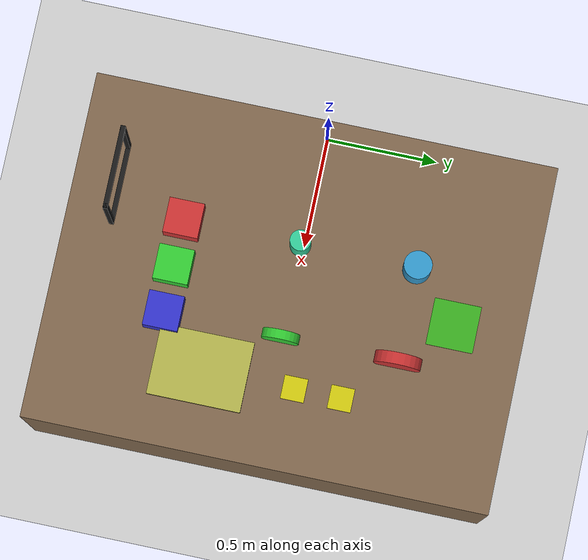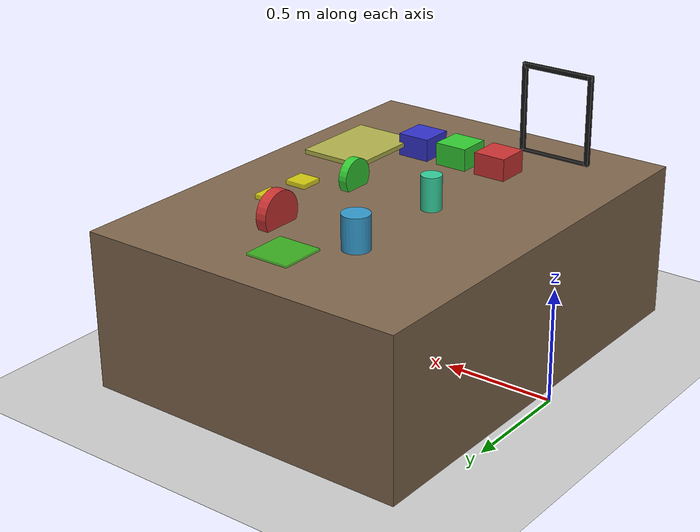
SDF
<?xml version="1.0" ?>
<sdf version="1.8">
  <world name="assembly_construction_tasks">

    <!-- Physics -->
    <physics name="1ms" type="ignored">
      <max_step_size>0.001</max_step_size>
      <real_time_factor>1.0</real_time_factor>
    </physics>

    <!-- Plugins -->
    <plugin filename="gz-sim-physics-system" name="gz::sim::systems::Physics"/>
    <plugin filename="gz-sim-user-commands-system" name="gz::sim::systems::UserCommands"/>
    <plugin filename="gz-sim-scene-broadcaster-system" name="gz::sim::systems::SceneBroadcaster"/>
    <plugin filename="gz-sim-contact-system" name="gz::sim::systems::Contact"/>

    <!-- Lighting -->
    <light type="directional" name="sun">
      <cast_shadows>true</cast_shadows>
      <pose>0 0 10 0 0 0</pose>
      <diffuse>0.8 0.8 0.8 1</diffuse>
      <specular>0.2 0.2 0.2 1</specular>
      <attenuation>
        <range>1000</range>
        <constant>0.9</constant>
        <linear>0.01</linear>
        <quadratic>0.001</quadratic>
      </attenuation>
      <direction>-0.5 0.1 -0.9</direction>
    </light>

    <!-- Ground Plane -->
    <model name="ground_plane">
      <static>true</static>
      <link name="link">
        <collision name="collision">
          <geometry>
            <plane>
              <normal>0 0 1</normal>
            </plane>
          </geometry>
        </collision>
        <visual name="visual">
          <geometry>
            <plane>
              <normal>0 0 1</normal>
              <size>100 100</size>
            </plane>
          </geometry>
          <material>
            <ambient>0.8 0.8 0.8 1</ambient>
            <diffuse>0.8 0.8 0.8 1</diffuse>
            <specular>0.8 0.8 0.8 1</specular>
          </material>
        </visual>
      </link>
    </model>

    <!-- Work Table -->
    <model name="work_table">
      <static>true</static>
      <pose>0.8 0 0.35 0 0 0</pose>
      <link name="link">
        <collision name="collision">
          <geometry>
            <box>
              <size>1.5 2.0 0.7</size>
            </box>
          </geometry>
        </collision>
        <visual name="visual">
          <geometry>
            <box>
              <size>1.5 2.0 0.7</size>
            </box>
          </geometry>
          <material>
            <ambient>0.5 0.4 0.3 1</ambient>
            <diffuse>0.5 0.4 0.3 1</diffuse>
          </material>
        </visual>
      </link>
    </model>

    <!-- Large Peg (Fixed Base) -->
    <model name="peg_base_large">
      <static>true</static>
      <pose>0.6 0.5 0.75 0 0 0</pose>
      <link name="link">
        <collision name="collision">
          <geometry>
            <cylinder>
              <radius>0.06</radius>
              <length>0.2</length>
            </cylinder>
          </geometry>
        </collision>
        <visual name="visual">
          <geometry>
            <cylinder>
              <radius>0.06</radius>
              <length>0.2</length>
            </cylinder>
          </geometry>
          <material>
            <ambient>0.2 0.6 0.8 1</ambient>
            <diffuse>0.2 0.6 0.8 1</diffuse>
          </material>
        </visual>
      </link>
    </model>

    <!-- Large Hole (Ring to place on peg) -->
    <model name="ring_large">
      <pose>1.0 0.5 0.75 0 1.57 0</pose>
      <link name="link">
        <collision name="collision_outer">
          <geometry>
            <cylinder>
              <radius>0.10</radius>
              <length>0.05</length>
            </cylinder>
          </geometry>
        </collision>
        <collision name="collision_inner">
          <geometry>
            <cylinder>
              <radius>0.065</radius>
              <length>0.051</length>
            </cylinder>
          </geometry>
        </collision>
        <visual name="visual">
          <geometry>
            <cylinder>
              <radius>0.10</radius>
              <length>0.05</length>
            </cylinder>
          </geometry>
          <material>
            <ambient>0.8 0.2 0.2 1</ambient>
            <diffuse>0.8 0.2 0.2 1</diffuse>
          </material>
        </visual>
        <inertial>
          <mass>0.5</mass>
          <inertia>
            <ixx>0.001</ixx>
            <iyy>0.001</iyy>
            <izz>0.001</izz>
          </inertia>
        </inertial>
      </link>
    </model>

    <!-- Medium Peg -->
    <model name="peg_base_medium">
      <static>true</static>
      <pose>0.6 0 0.75 0 0 0</pose>
      <link name="link">
        <collision name="collision">
          <geometry>
            <cylinder>
              <radius>0.045</radius>
              <length>0.2</length>
            </cylinder>
          </geometry>
        </collision>
        <visual name="visual">
          <geometry>
            <cylinder>
              <radius>0.045</radius>
              <length>0.2</length>
            </cylinder>
          </geometry>
          <material>
            <ambient>0.2 0.8 0.6 1</ambient>
            <diffuse>0.2 0.8 0.6 1</diffuse>
          </material>
        </visual>
      </link>
    </model>

    <!-- Medium Ring -->
    <model name="ring_medium">
      <pose>1.0 0 0.75 0 1.57 0</pose>
      <link name="link">
        <collision name="collision">
          <geometry>
            <cylinder>
              <radius>0.08</radius>
              <length>0.04</length>
            </cylinder>
          </geometry>
        </collision>
        <visual name="visual">
          <geometry>
            <cylinder>
              <radius>0.08</radius>
              <length>0.04</length>
            </cylinder>
          </geometry>
          <material>
            <ambient>0.2 0.8 0.2 1</ambient>
            <diffuse>0.2 0.8 0.2 1</diffuse>
          </material>
        </visual>
        <inertial>
          <mass>0.3</mass>
          <inertia>
            <ixx>0.0005</ixx>
            <iyy>0.0005</iyy>
            <izz>0.0005</izz>
          </inertia>
        </inertial>
      </link>
    </model>

    <!-- Stack of Building Blocks -->
    <model name="block_1">
      <pose>0.6 -0.5 0.75 0 0 0</pose>
      <link name="link">
        <collision name="collision">
          <geometry>
            <box>
              <size>0.15 0.15 0.1</size>
            </box>
          </geometry>
          <surface>
            <friction>
              <ode>
                <mu>0.8</mu>
                <mu2>0.8</mu2>
              </ode>
            </friction>
          </surface>
        </collision>
        <visual name="visual">
          <geometry>
            <box>
              <size>0.15 0.15 0.1</size>
            </box>
          </geometry>
          <material>
            <ambient>0.8 0.2 0.2 1</ambient>
            <diffuse>0.8 0.2 0.2 1</diffuse>
          </material>
        </visual>
        <inertial>
          <mass>1.0</mass>
          <inertia>
            <ixx>0.003</ixx>
            <iyy>0.003</iyy>
            <izz>0.003</izz>
          </inertia>
        </inertial>
      </link>
    </model>

    <model name="block_2">
      <pose>0.8 -0.5 0.75 0 0 0</pose>
      <link name="link">
        <collision name="collision">
          <geometry>
            <box>
              <size>0.15 0.15 0.1</size>
            </box>
          </geometry>
          <surface>
            <friction>
              <ode>
                <mu>0.8</mu>
                <mu2>0.8</mu2>
              </ode>
            </friction>
          </surface>
        </collision>
        <visual name="visual">
          <geometry>
            <box>
              <size>0.15 0.15 0.1</size>
            </box>
          </geometry>
          <material>
            <ambient>0.2 0.8 0.2 1</ambient>
            <diffuse>0.2 0.8 0.2 1</diffuse>
          </material>
        </visual>
        <inertial>
          <mass>1.0</mass>
          <inertia>
            <ixx>0.003</ixx>
            <iyy>0.003</iyy>
            <izz>0.003</izz>
          </inertia>
        </inertial>
      </link>
    </model>

    <model name="block_3">
      <pose>1.0 -0.5 0.75 0 0 0</pose>
      <link name="link">
        <collision name="collision">
          <geometry>
            <box>
              <size>0.15 0.15 0.1</size>
            </box>
          </geometry>
          <surface>
            <friction>
              <ode>
                <mu>0.8</mu>
                <mu2>0.8</mu2>
              </ode>
            </friction>
          </surface>
        </collision>
        <visual name="visual">
          <geometry>
            <box>
              <size>0.15 0.15 0.1</size>
            </box>
          </geometry>
          <material>
            <ambient>0.2 0.2 0.8 1</ambient>
            <diffuse>0.2 0.2 0.8 1</diffuse>
          </material>
        </visual>
        <inertial>
          <mass>1.0</mass>
          <inertia>
            <ixx>0.003</ixx>
            <iyy>0.003</iyy>
            <izz>0.003</izz>
          </inertia>
        </inertial>
      </link>
    </model>

    <!-- Large Panel to Position -->
    <model name="panel_1">
      <pose>1.2 -0.3 0.75 0 0 0</pose>
      <link name="link">
        <collision name="collision">
          <geometry>
            <box>
              <size>0.3 0.4 0.02</size>
            </box>
          </geometry>
          <surface>
            <friction>
              <ode>
                <mu>0.6</mu>
                <mu2>0.6</mu2>
              </ode>
            </friction>
          </surface>
        </collision>
        <visual name="visual">
          <geometry>
            <box>
              <size>0.3 0.4 0.02</size>
            </box>
          </geometry>
          <material>
            <ambient>0.7 0.7 0.3 1</ambient>
            <diffuse>0.7 0.7 0.3 1</diffuse>
          </material>
        </visual>
        <inertial>
          <mass>0.8</mass>
          <inertia>
            <ixx>0.01</ixx>
            <iyy>0.006</iyy>
            <izz>0.013</izz>
          </inertia>
        </inertial>
      </link>
    </model>

    <!-- Target Frame for Panel Placement -->
    <model name="panel_target_frame">
      <static>true</static>
      <pose>0.5 -0.8 0.9 1.57 0 0</pose>
      <link name="frame_bottom">
        <pose>0 -0.2 0 0 0 0</pose>
        <collision name="collision">
          <geometry>
            <box>
              <size>0.35 0.02 0.02</size>
            </box>
          </geometry>
        </collision>
        <visual name="visual">
          <geometry>
            <box>
              <size>0.35 0.02 0.02</size>
            </box>
          </geometry>
          <material>
            <ambient>0.1 0.1 0.1 1</ambient>
            <diffuse>0.1 0.1 0.1 1</diffuse>
          </material>
        </visual>
      </link>
      <link name="frame_top">
        <pose>0 0.2 0 0 0 0</pose>
        <collision name="collision">
          <geometry>
            <box>
              <size>0.35 0.02 0.02</size>
            </box>
          </geometry>
        </collision>
        <visual name="visual">
          <geometry>
            <box>
              <size>0.35 0.02 0.02</size>
            </box>
          </geometry>
          <material>
            <ambient>0.1 0.1 0.1 1</ambient>
            <diffuse>0.1 0.1 0.1 1</diffuse>
          </material>
        </visual>
      </link>
      <link name="frame_left">
        <pose>-0.165 0 0 0 0 0</pose>
        <collision name="collision">
          <geometry>
            <box>
              <size>0.02 0.42 0.02</size>
            </box>
          </geometry>
        </collision>
        <visual name="visual">
          <geometry>
            <box>
              <size>0.02 0.42 0.02</size>
            </box>
          </geometry>
          <material>
            <ambient>0.1 0.1 0.1 1</ambient>
            <diffuse>0.1 0.1 0.1 1</diffuse>
          </material>
        </visual>
      </link>
      <link name="frame_right">
        <pose>0.165 0 0 0 0 0</pose>
        <collision name="collision">
          <geometry>
            <box>
              <size>0.02 0.42 0.02</size>
            </box>
          </geometry>
        </collision>
        <visual name="visual">
          <geometry>
            <box>
              <size>0.02 0.42 0.02</size>
            </box>
          </geometry>
          <material>
            <ambient>0.1 0.1 0.1 1</ambient>
            <diffuse>0.1 0.1 0.1 1</diffuse>
          </material>
        </visual>
      </link>
    </model>

    <!-- Block Stacking Zone (Visual Markers) -->
    <model name="stacking_zone_marker">
      <static>true</static>
      <pose>0.8 0.7 0.705 0 0 0</pose>
      <link name="link">
        <visual name="visual">
          <geometry>
            <box>
              <size>0.2 0.2 0.01</size>
            </box>
          </geometry>
          <material>
            <ambient>0 1 0 0.5</ambient>
            <diffuse>0 1 0 0.5</diffuse>
          </material>
        </visual>
      </link>
    </model>

    <!-- Alignment Guides (for part positioning) -->
    <model name="alignment_guide_1">
      <static>true</static>
      <pose>1.2 0.3 0.71 0 0 0</pose>
      <link name="link">
        <visual name="visual">
          <geometry>
            <box>
              <size>0.1 0.1 0.02</size>
            </box>
          </geometry>
          <material>
            <ambient>1 1 0 0.7</ambient>
            <diffuse>1 1 0 0.7</diffuse>
          </material>
        </visual>
      </link>
    </model>

    <model name="alignment_guide_2">
      <static>true</static>
      <pose>1.2 0.1 0.71 0 0 0</pose>
      <link name="link">
        <visual name="visual">
          <geometry>
            <box>
              <size>0.1 0.1 0.02</size>
            </box>
          </geometry>
          <material>
            <ambient>1 1 0 0.7</ambient>
            <diffuse>1 1 0 0.7</diffuse>
          </material>
        </visual>
      </link>
    </model>

  </world>
</sdf>
